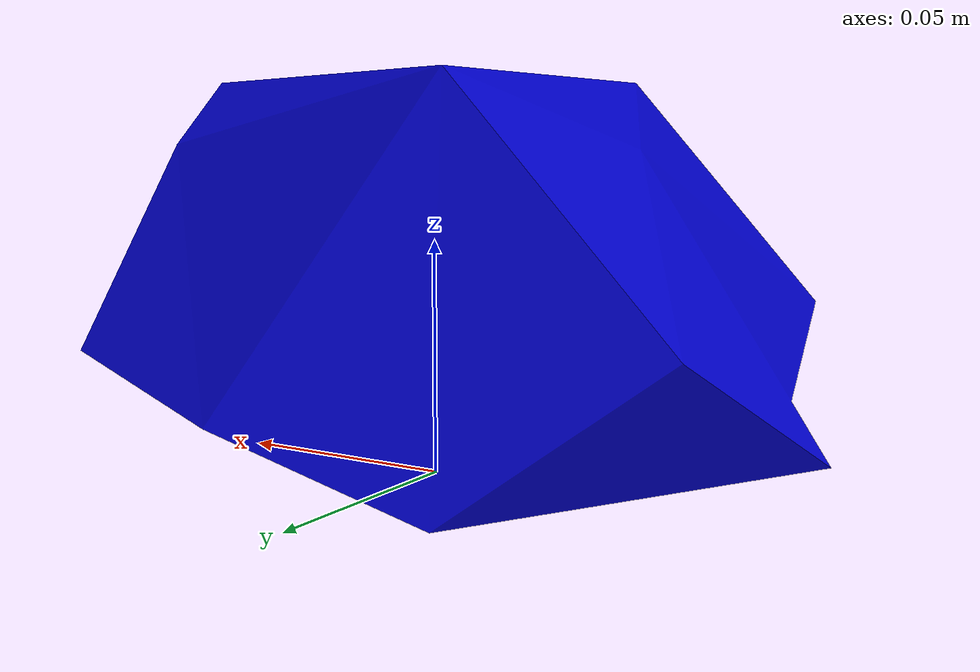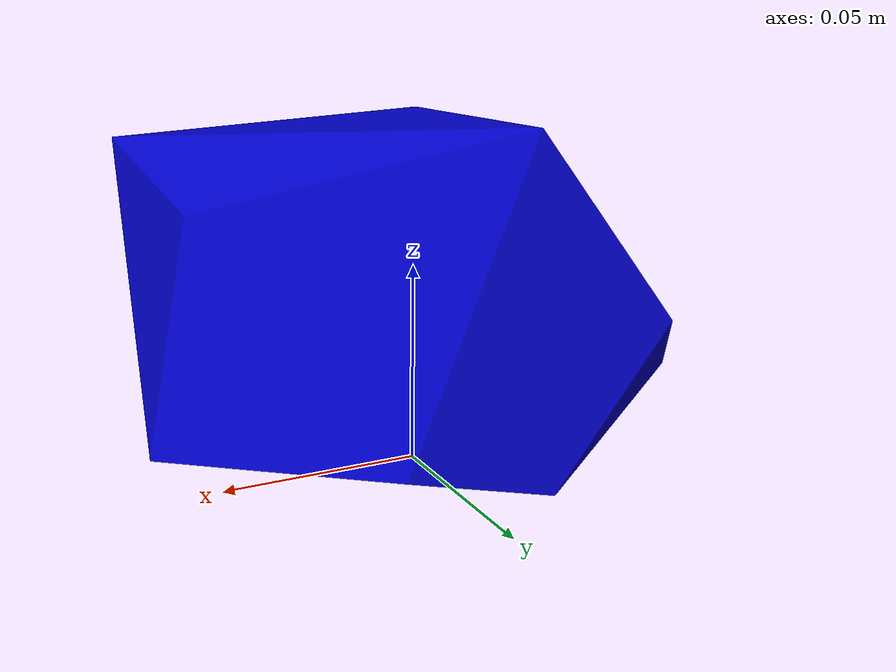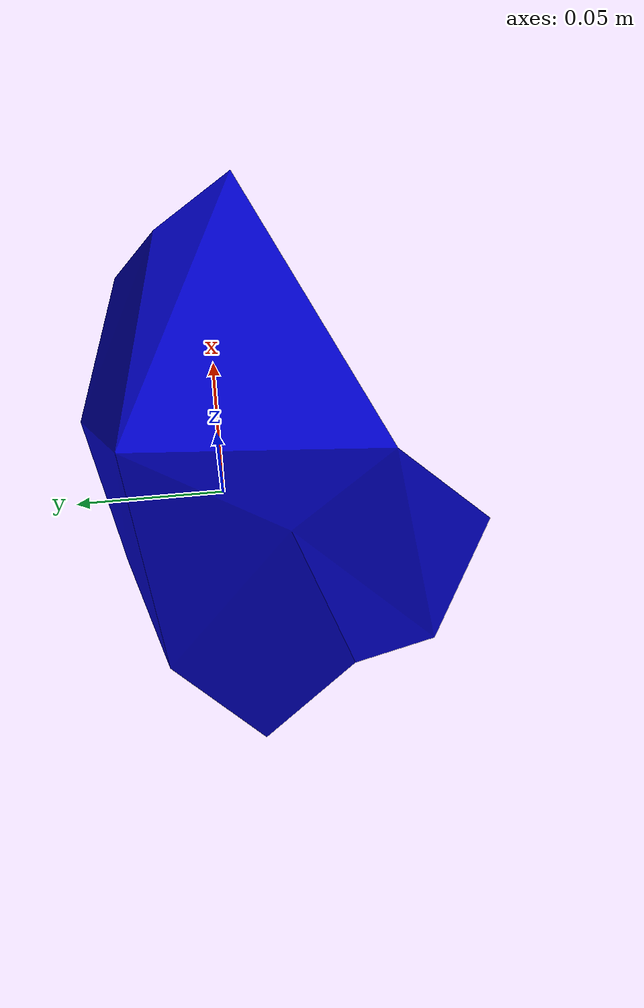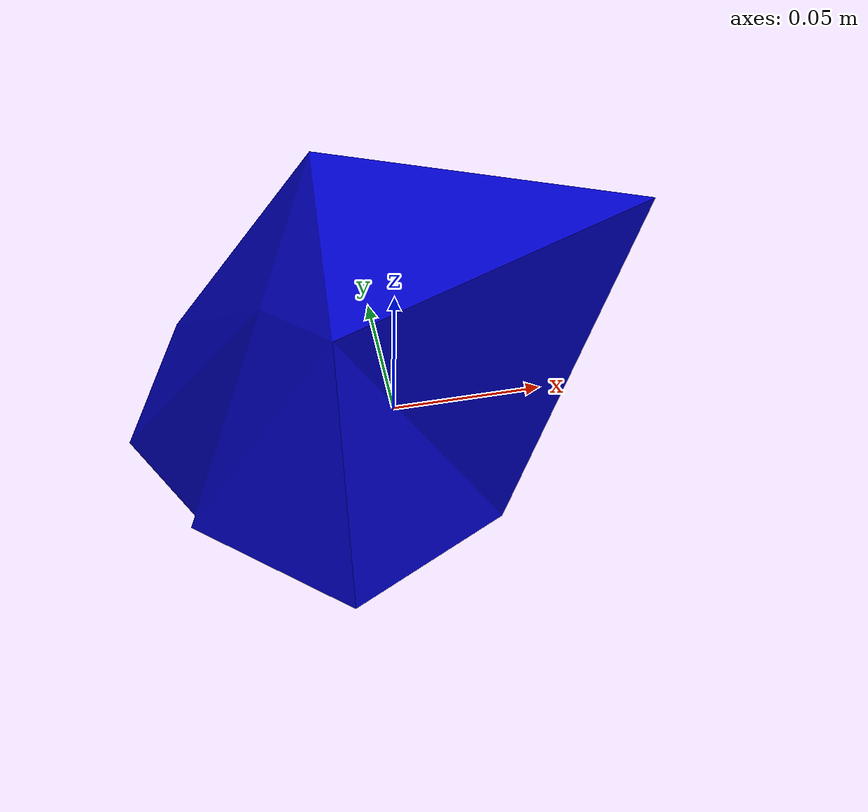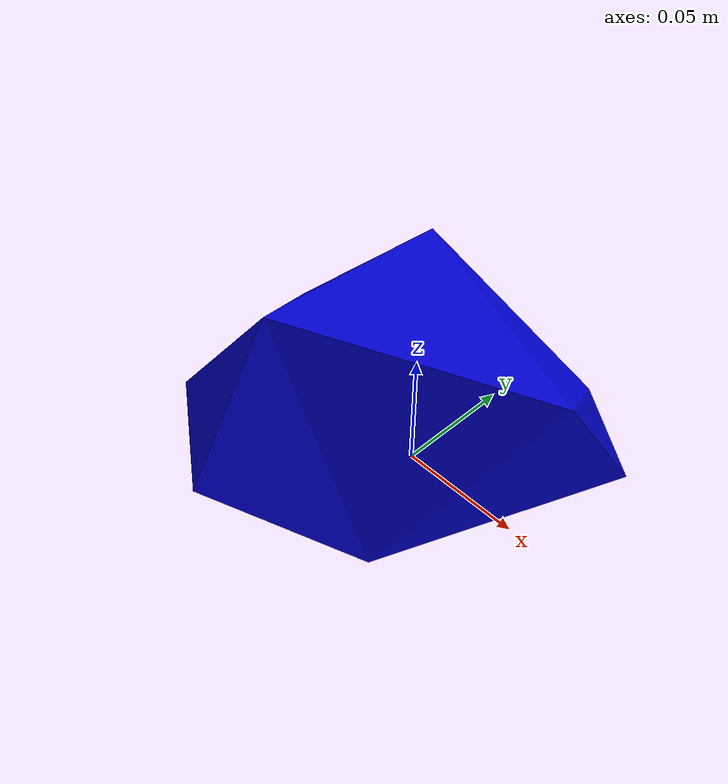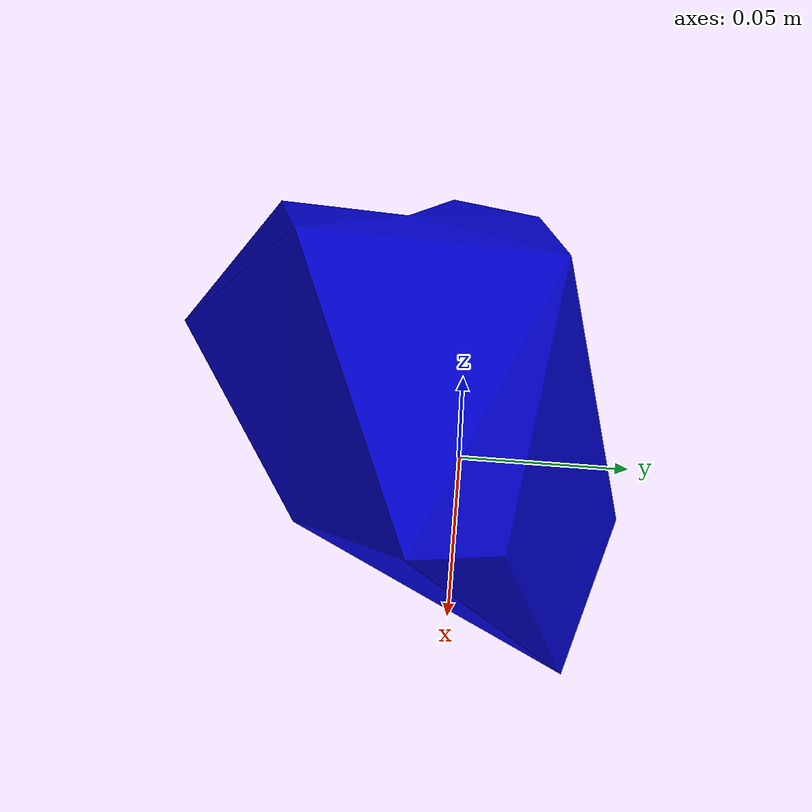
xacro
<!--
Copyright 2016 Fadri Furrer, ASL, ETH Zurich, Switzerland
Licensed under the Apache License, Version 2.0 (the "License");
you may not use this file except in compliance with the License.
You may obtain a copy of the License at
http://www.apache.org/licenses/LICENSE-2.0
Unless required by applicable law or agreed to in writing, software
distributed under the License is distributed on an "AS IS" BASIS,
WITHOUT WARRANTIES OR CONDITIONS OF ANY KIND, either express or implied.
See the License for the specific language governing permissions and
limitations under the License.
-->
<?xml version="1.0"?>

<robot name="1_poly" xmlns:xacro="http://ros.org/wiki/xacro">
  <xacro:property name="mesh_file" value="package://urdf_models/models/polygons/1_hollowed.stl" />
  <xacro:property name="mass" value="1.0" />
  <link name="base_link"></link>

  <joint name="base_joint" type="fixed">
    <origin xyz="0 0 0" rpy="0 0 0" />
    <parent link="base_link" />
    <child link="base_link_inertia" />
  </joint>
  <link name="base_link_inertia">
      <inertial>
        <mass value="${mass}" />  <!-- [kg] -->
        <origin xyz="-0.045476e-02 -0.094378e-02 0.385188e-02" />
        <inertia ixx="0.061333e-05" ixy="-0.011147e-05" ixz="-0.007462e-05"
                			    iyy="0.080086e-05"  iyz="-0.001807e-05"
                 								izz="0.086440e-05" />
      </inertial>

      <visual>
        <origin xyz="0 0 0" rpy="0 0 0" />
        <geometry>
          <mesh filename="${mesh_file}" scale="1 1 1" />
        </geometry>
	<material name="blue">
	  <color rgba="0 0 .8 1"/>
	</material>
      </visual>

      <collision>
        <origin xyz="0 0 0" rpy="0 0 0" />
        <geometry>
          <mesh filename="${mesh_file}" scale="1 1 1" />
        </geometry>
      </collision>
    </link>

   <gazebo reference="$base_link_inertia">
        <mu1>1.1</mu1>
        <mu2>1.1</mu2>
   </gazebo>

</robot>
